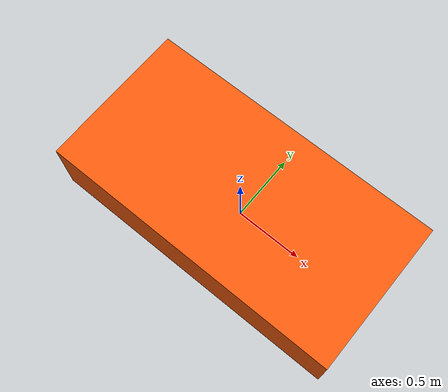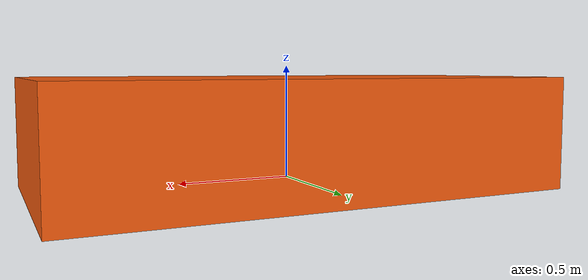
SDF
<?xml version="1.0" ?>
<sdf version="1.10">
  <model name="usv_minimal">
    <pose>0 0 0.2 0 0 0</pose>
    <static>false</static>

    <link name="hull_link">
      <inertial>
        <mass>350.0</mass>
        <inertia>
          <ixx>42.58</ixx>
          <ixy>0.0</ixy>
          <ixz>0.0</ixz>
          <iyy>148.46</iyy>
          <iyz>0.0</iyz>
          <izz>176.46</izz>
        </inertia>
      </inertial>

      <collision name="hull_collision">
        <geometry>
          <box>
            <size>2.2 1.1 0.5</size>
          </box>
        </geometry>
      </collision>

      <visual name="hull_visual">
        <geometry>
          <box>
            <size>2.2 1.1 0.5</size>
          </box>
        </geometry>
        <material>
          <ambient>0.95 0.35 0.05 1</ambient>
          <diffuse>0.95 0.35 0.05 1</diffuse>
          <emissive>0.25 0.1 0.02 1</emissive>
        </material>
      </visual>
    </link>

    <plugin
      filename="libusv_hydro_system.so"
      name="usv_hydro::systems::HydroCellSystem">
      <config_file>usv_sim_ws/src/usv_hydro/config/hydro_profiles.yaml</config_file>
      <profile>baseline</profile>
      <link_name>hull_link</link_name>
      <current_velocity>0 0 0</current_velocity>
    </plugin>
  </model>
</sdf>
